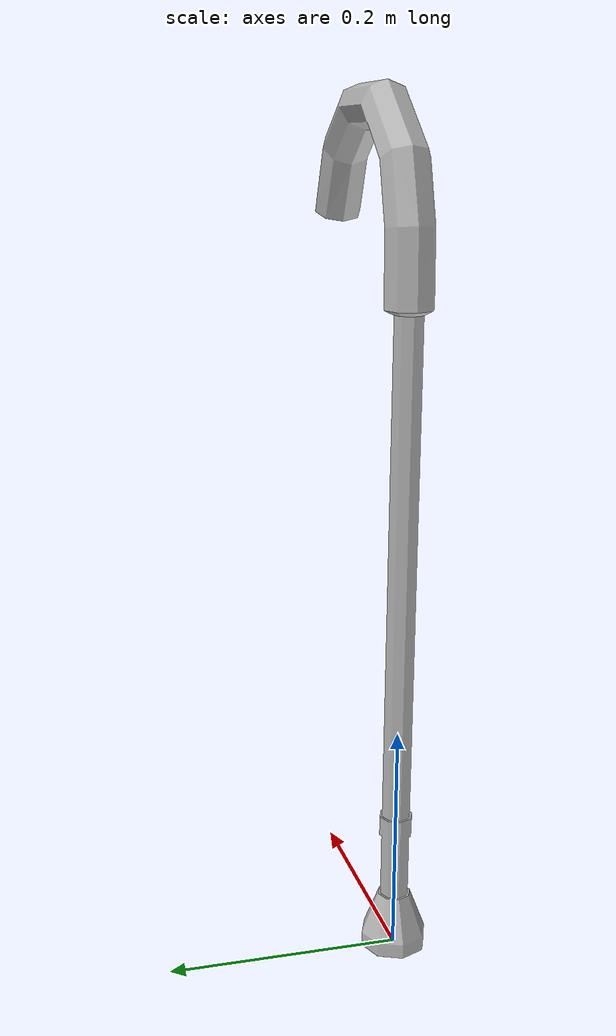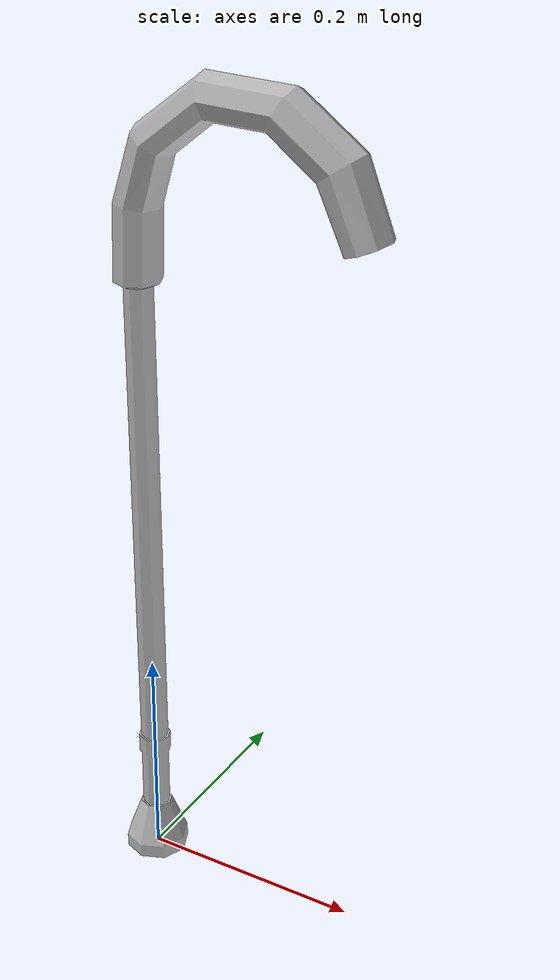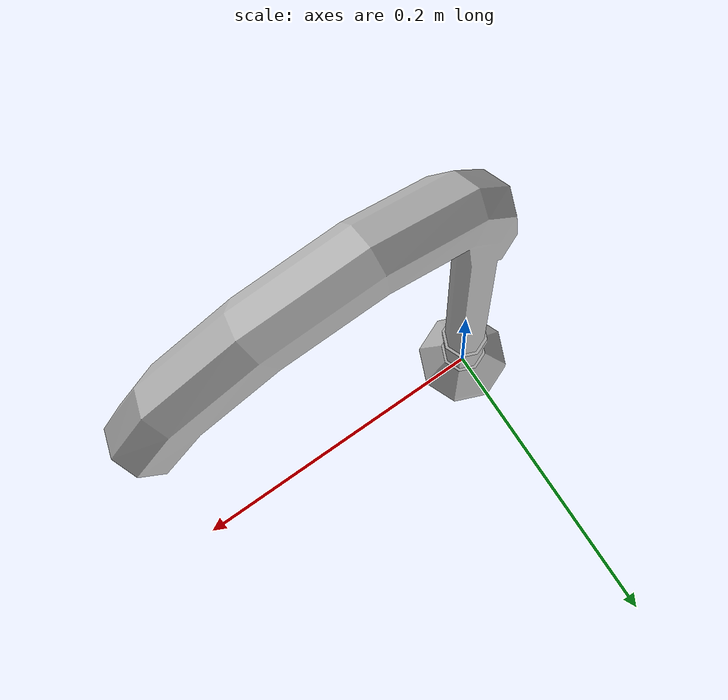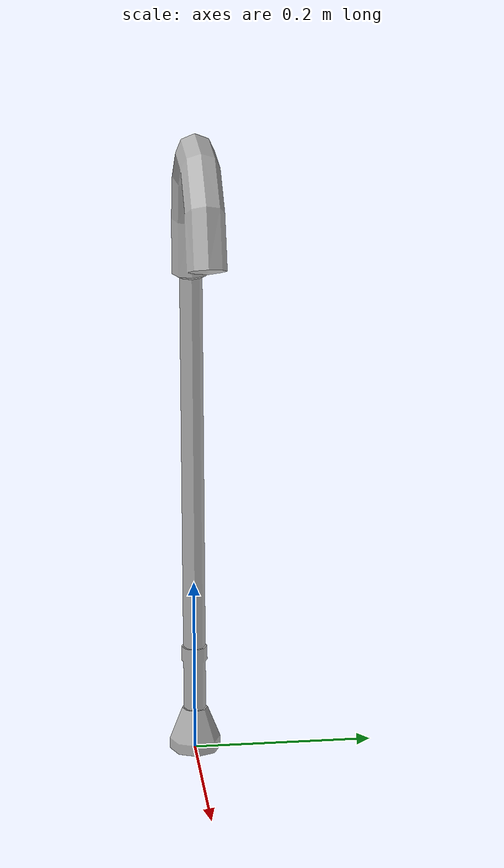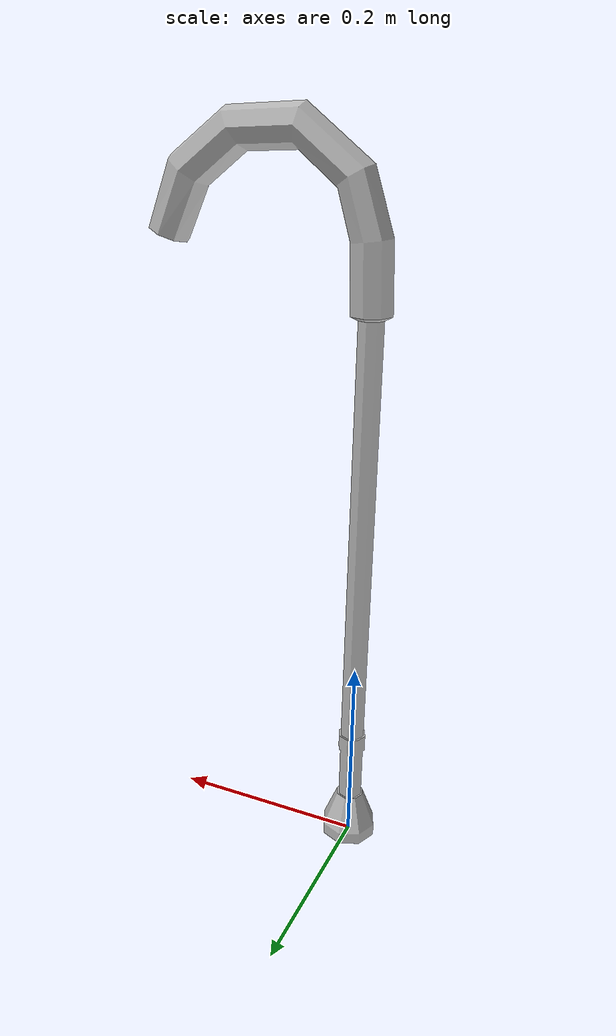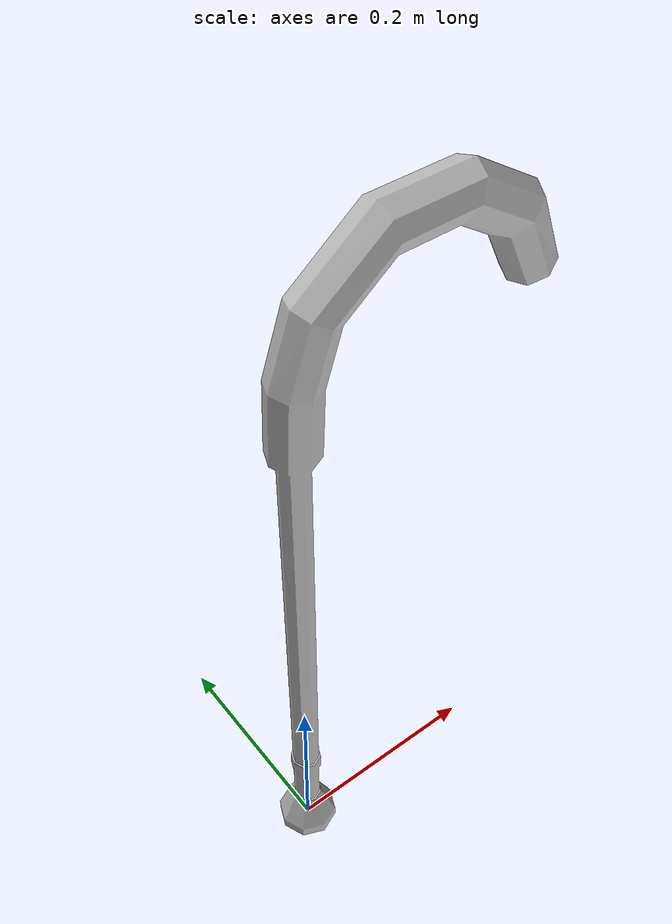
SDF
<sdf version="1.6">
  <model name="WalkingCane">
   <static>true</static>
    <link name="body">
      <pose>0 0 0 0 0 0</pose>

      <visual name="visual">
        <geometry>
          <mesh>
            <uri>model://WalkingCane/meshes/WalkingCane.obj</uri>
          </mesh>
        </geometry>
      </visual>

      <collision name="collision">
        <geometry>
          <mesh>
            <uri>model://WalkingCane/meshes/WalkingCane_Col.obj</uri>
          </mesh>
        </geometry>
      </collision>

    </link>
  </model>
</sdf>
